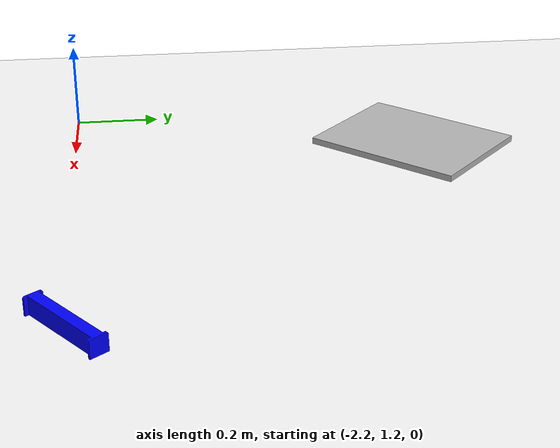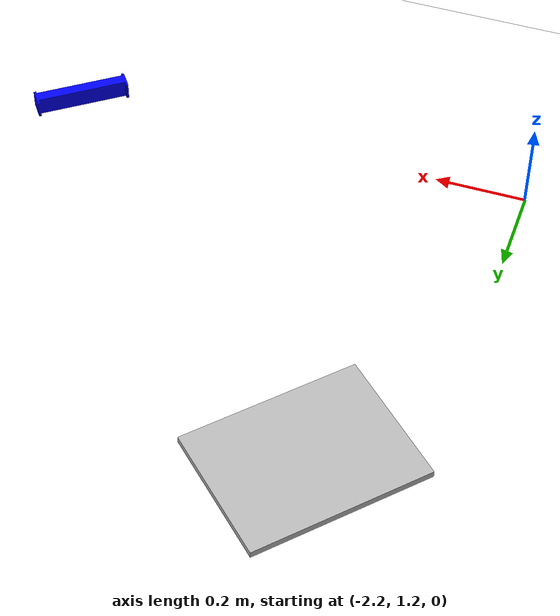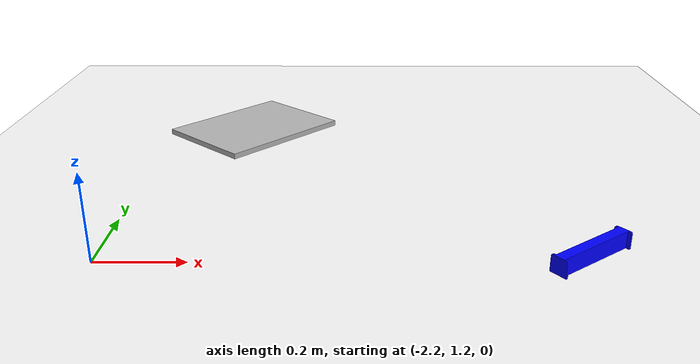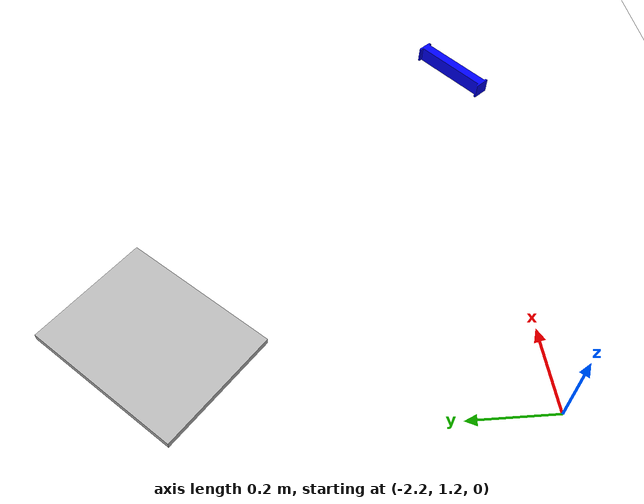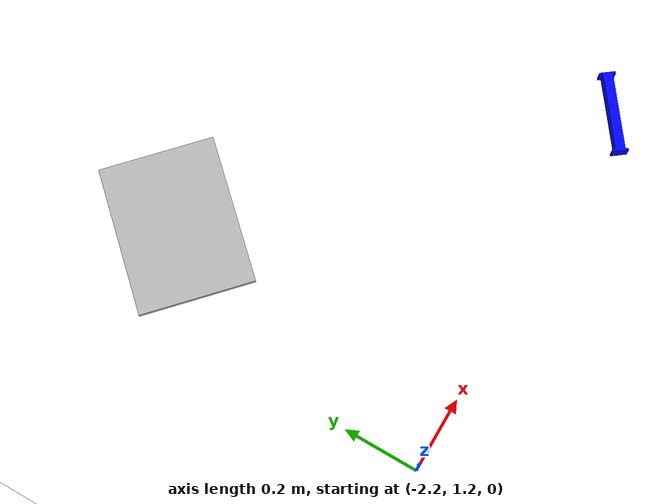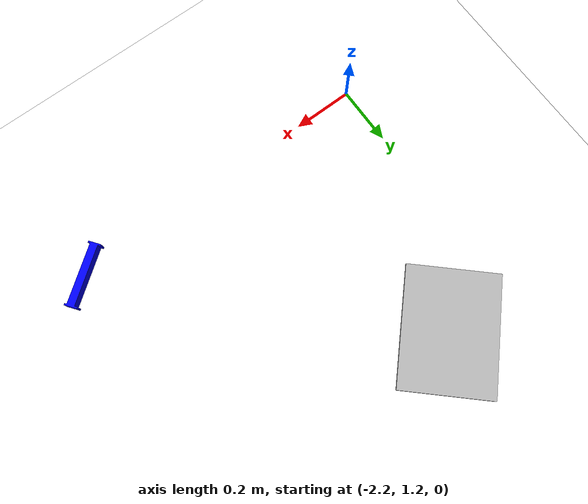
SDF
<sdf version="1.6">
 <world name="default">
  <light name="sun" type="directional">
   <pose>0 0 10 0 -0 0</pose>
   <diffuse>0.8 0.8 0.8 1</diffuse>
   <specular>0.2 0.2 0.2 1</specular>
   <attenuation>
    <range>1000</range>
    <constant>0.9</constant>
    <linear>0.01</linear>
    <quadratic>0.001</quadratic>
   </attenuation>
   <direction>-0.5 0.1 -0.9</direction>
   <spot><inner_angle>0</inner_angle><outer_angle>0</outer_angle><falloff>0</falloff></spot>
  </light>
  <model name="line_path_ground_plane">
   <static>1</static>
   <link name="link">
    <collision name="collision">
     <geometry><plane><normal>0 0 1</normal><size>40 40</size></plane></geometry>
     <surface><friction><ode><mu>100</mu><mu2>50</mu2></ode></friction></surface>
    </collision>
    <visual name="visual">
     <cast_shadows>0</cast_shadows>
     <geometry><plane><normal>0 0 1</normal><size>40 40</size></plane></geometry>
     <material>
      <script>
       <uri>model://line_path_ground_plane/materials/scripts/line_path_ground_plane.material</uri>
       <name>LinePathGroundPlane/Image</name>
      </script>
      <ambient>1 1 1 1</ambient>
     </material>
    </visual>
   </link>
  </model>
  <gravity>0 0 -9.8</gravity>
  <magnetic_field>6e-06 2.3e-05 -4.2e-05</magnetic_field>
  <atmosphere type="adiabatic"/>
  <physics name="default_physics" default="0" type="ode">
   <max_step_size>0.001</max_step_size>
   <real_time_factor>1</real_time_factor>
   <real_time_update_rate>1000</real_time_update_rate>
  </physics>
  <scene>
   <grid>0</grid>
   <ambient>0.5 0.5 0.5 1</ambient>
   <background>0.7 0.7 0.7 1</background>
   <shadows>1</shadows>
  </scene>
  <audio><device>default</device></audio>
  <spherical_coordinates>
   <surface_model>EARTH_WGS84</surface_model>
   <latitude_deg>0</latitude_deg>
   <longitude_deg>0</longitude_deg>
   <elevation>0</elevation>
   <heading_deg>0</heading_deg>
  </spherical_coordinates>
  <model name="stairs">
   <link name="Component1">
    <inertial>
     <mass>14.04</mass>
     <pose>-0.000388 -0.000365 0.0075 0 -0 0</pose>
     <inertia>
      <ixx>0.17822</ixx>
      <iyy>0.105563</iyy>
      <izz>0.283257</izz>
      <ixy>8.6859e-18</ixy>
      <iyz>2.91379e-18</iyz>
      <ixz>-2.90024e-18</ixz>
     </inertia>
    </inertial>
    <visual name="Component1_visual">
     <geometry>
      <mesh><uri>model://stairs/meshes/Component1.stl</uri><scale>0.001 0.001 0.001</scale></mesh>
     </geometry>
    </visual>
    <collision name="Component1_collision">
     <geometry>
      <mesh><uri>model://stairs/meshes/Component1.stl</uri><scale>0.001 0.001 0.001</scale></mesh>
     </geometry>
    </collision>
   </link>
   <pose>-1.96935 2.02094 -1.4e-05 -7.3e-05 0 -0.750001</pose>
  </model>
  <model name="hurdle">
   <link name="Component1">
    <inertial>
     <mass>1.7337</mass>
     <pose>0 0 0.019992 0 -0 0</pose>
     <inertia>
      <ixx>0.000333814</ixx>
      <iyy>0.00696935</iyy>
      <izz>0.00684116</izz>
      <ixy>9.54235e-35</ixy>
      <iyz>1.81864e-19</iyz>
      <ixz>1.45491e-18</ixz>
     </inertia>
    </inertial>
    <visual name="Component1_visual">
     <geometry>
      <mesh><uri>model://hurdle/meshes/Component1.stl</uri><scale>0.001 0.001 0.001</scale></mesh>
     </geometry>
     <material>
      <ambient>0 0 1 1</ambient>
      <diffuse>0 0 1 1</diffuse>
      <specular>0.5 0.5 0.5 1</specular>
      <emissive>0 0 0 1</emissive>
     </material>
    </visual>
    <collision name="Component1_collision">
     <geometry>
      <mesh><uri>model://hurdle/meshes/Component1.stl</uri><scale>0.001 0.001 0.001</scale></mesh>
     </geometry>
    </collision>
   </link>
   <pose>-1.16657 1.214 -1e-05 1.3e-05 -0.000102 0.646479</pose>
  </model>
 </world>
</sdf>
